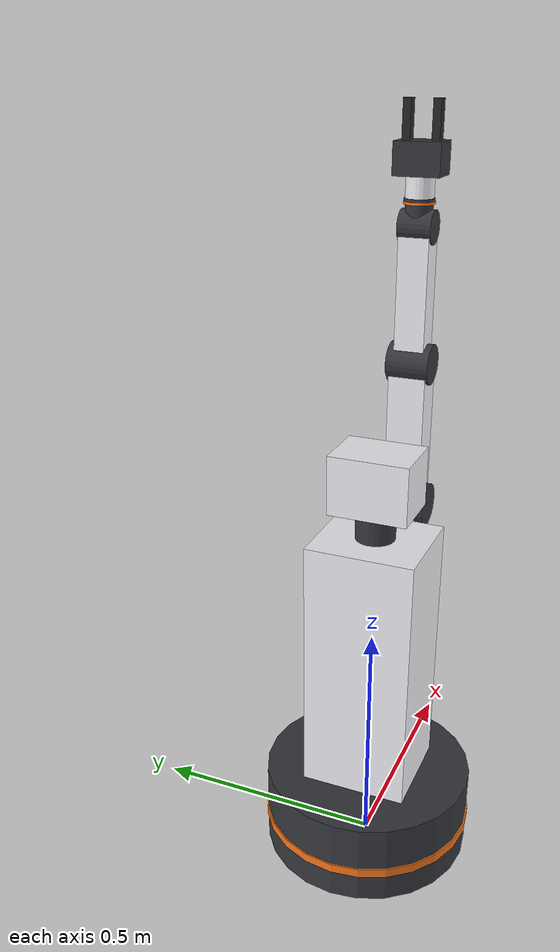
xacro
<?xml version="1.0"?>
<robot name="service_robot" xmlns:xacro="http://www.ros.org/wiki/xacro">

  <!-- Dimensi Base (Mobile Chassis Statis) -->
  <xacro:property name="chassis_radius"    value="0.22"/>  <!-- Diameter 44 cm -->
  <xacro:property name="chassis_height"    value="0.18"/>

  <!-- Dimensi Torso (Badan Statis) -->
  <xacro:property name="torso_width"       value="0.22"/>
  <xacro:property name="torso_depth"       value="0.20"/>
  <xacro:property name="torso_height"      value="0.55"/>

  <!-- Dimensi Kepala / Sensor Mast -->
  <xacro:property name="neck_height"       value="0.06"/>
  <xacro:property name="head_depth"        value="0.12"/>
  <xacro:property name="head_width"        value="0.16"/>
  <xacro:property name="head_height"       value="0.12"/>

  <!-- Dimensi Lengan (6-DOF) -->
  <xacro:property name="arm_mount_len"     value="0.09"/>  <!-- Tungkai maju bahu (14 cm, bebas dari tabung base) -->
  <xacro:property name="shoulder_len"      value="0.10"/>
  <xacro:property name="upper_arm_len"     value="0.30"/>
  <xacro:property name="forearm_len"       value="0.26"/>
  <xacro:property name="wrist_len"         value="0.09"/>
  <xacro:property name="gripper_base_len"  value="0.06"/>
  <xacro:property name="finger_len"        value="0.07"/>
  <xacro:property name="finger_width"      value="0.015"/>
  <xacro:property name="finger_stroke"     value="0.04"/>

  <!-- MATERIAL & WARNA KHAS SERVICE ROBOT -->
  <material name="robot_white">
    <color rgba="0.93 0.93 0.95 1.0"/>
  </material>
  <material name="dark_grey">
    <color rgba="0.20 0.21 0.23 1.0"/>
  </material>
  <material name="accent_orange">
    <color rgba="0.95 0.45 0.1 1.0"/>
  </material>
  <material name="head_visor">
    <color rgba="0.1 0.12 0.15 1.0"/>
  </material>
  <material name="gripper_finger_color">
    <color rgba="0.15 0.15 0.15 1.0"/>
  </material>
  <material name="camera_blue">
    <color rgba="0.1 0.3 0.7 1.0"/>
  </material>

  <!-- ============================================================
       STRUKTUR BODY STATIS (KOKOH DENGAN HUKUM FISIKA NYATA)
       ============================================================ -->

  <link name="world"/>

  <joint name="world_fixed" type="fixed">
    <parent link="world"/>
    <child link="base_link"/>
    <origin xyz="0 0 0" rpy="0 0 0"/>
  </joint>

  <!-- BASE CHASSIS (Lantai Z=0) -->
  <link name="base_link">
    <visual>
      <origin xyz="0 0 ${chassis_height/2}" rpy="0 0 0"/>
      <geometry>
        <cylinder length="${chassis_height}" radius="${chassis_radius}"/>
      </geometry>
      <material name="dark_grey"/>
    </visual>
    <visual>
      <origin xyz="0 0 ${chassis_height * 0.4}" rpy="0 0 0"/>
      <geometry>
        <cylinder length="0.02" radius="${chassis_radius + 0.003}"/>
      </geometry>
      <material name="accent_orange"/>
    </visual>
    <collision>
      <origin xyz="0 0 ${chassis_height/2}" rpy="0 0 0"/>
      <geometry>
        <cylinder length="${chassis_height}" radius="${chassis_radius}"/>
      </geometry>
    </collision>
    <inertial>
      <mass value="20.0"/>
      <origin xyz="0 0 ${chassis_height/2}"/>
      <inertia ixx="0.30" ixy="0" ixz="0" iyy="0.30" iyz="0" izz="0.45"/>
    </inertial>
  </link>

  <!-- TORSO / BADAN UTAMA -->
  <joint name="base_to_torso" type="fixed">
    <parent link="base_link"/>
    <child link="torso_link"/>
    <origin xyz="0 0 ${chassis_height}" rpy="0 0 0"/>
  </joint>

  <link name="torso_link">
    <visual>
      <origin xyz="0 0 ${torso_height/2}" rpy="0 0 0"/>
      <geometry>
        <box size="${torso_depth} ${torso_width} ${torso_height}"/>
      </geometry>
      <material name="robot_white"/>
    </visual>
    <visual>
      <origin xyz="${torso_depth/2 + 0.001} 0 ${torso_height/2}" rpy="0 0 0"/>
      <geometry>
        <box size="0.002 0.04 ${torso_height * 0.7}"/>
      </geometry>
      <material name="accent_orange"/>
    </visual>
    <visual>
      <origin xyz="${torso_depth/2 + 0.001} 0 ${torso_height * 0.75}" rpy="0 0 0"/>
      <geometry>
        <box size="0.002 0.14 0.12"/>
      </geometry>
      <material name="dark_grey"/>
    </visual>
    <collision>
      <origin xyz="0 0 ${torso_height/2}" rpy="0 0 0"/>
      <geometry>
        <box size="${torso_depth} ${torso_width} ${torso_height}"/>
      </geometry>
    </collision>
    <inertial>
      <mass value="15.0"/>
      <origin xyz="0 0 ${torso_height/2}"/>
      <inertia ixx="0.35" ixy="0" ixz="0" iyy="0.32" iyz="0" izz="0.15"/>
    </inertial>
  </link>

  <!-- KEPALA / SENSOR MAST STATIS -->
  <joint name="torso_to_neck" type="fixed">
    <parent link="torso_link"/>
    <child link="neck_link"/>
    <origin xyz="0 0 ${torso_height}" rpy="0 0 0"/>
  </joint>

  <link name="neck_link">
    <visual>
      <origin xyz="0 0 ${neck_height/2}" rpy="0 0 0"/>
      <geometry>
        <cylinder length="${neck_height}" radius="0.04"/>
      </geometry>
      <material name="dark_grey"/>
    </visual>
    <collision>
      <origin xyz="0 0 ${neck_height/2}" rpy="0 0 0"/>
      <geometry>
        <cylinder length="${neck_height}" radius="0.04"/>
      </geometry>
    </collision>
    <inertial>
      <mass value="0.5"/>
      <origin xyz="0 0 ${neck_height/2}"/>
      <inertia ixx="0.001" ixy="0" ixz="0" iyy="0.001" iyz="0" izz="0.001"/>
    </inertial>
  </link>

  <joint name="neck_to_head" type="fixed">
    <parent link="neck_link"/>
    <child link="head_link"/>
    <origin xyz="0 0 ${neck_height}" rpy="0 0 0"/>
  </joint>

  <link name="head_link">
    <visual>
      <origin xyz="0 0 ${head_height/2}" rpy="0 0 0"/>
      <geometry>
        <box size="${head_depth} ${head_width} ${head_height}"/>
      </geometry>
      <material name="robot_white"/>
    </visual>
    <visual>
      <origin xyz="${head_depth/2 + 0.001} 0 ${head_height/2}" rpy="0 0 0"/>
      <geometry>
        <box size="0.002 ${head_width * 0.8} ${head_height * 0.6}"/>
      </geometry>
      <material name="head_visor"/>
    </visual>
    <collision>
      <origin xyz="0 0 ${head_height/2}" rpy="0 0 0"/>
      <geometry>
        <box size="${head_depth} ${head_width} ${head_height}"/>
      </geometry>
    </collision>
    <inertial>
      <mass value="1.0"/>
      <origin xyz="0 0 ${head_height/2}"/>
      <inertia ixx="0.003" ixy="0" ixz="0" iyy="0.003" iyz="0" izz="0.003"/>
    </inertial>
  </link>

  <!-- ============================================================
       ARM MOUNT & 6-DOF ARM DENGAN BATASAN SUDUT FISIK REALISTIS
       ============================================================ -->

  <joint name="torso_to_arm_mount" type="fixed">
    <parent link="torso_link"/>
    <child link="arm_mount_link"/>
    <origin xyz="${torso_depth/2} 0 ${torso_height - 0.10}" rpy="0 0 0"/>
  </joint>

  <link name="arm_mount_link">
    <!-- Casing tungkai silinder maju -->
    <visual>
      <origin xyz="${arm_mount_len/2} 0 0" rpy="0 1.5708 0"/>
      <geometry>
        <cylinder length="${arm_mount_len}" radius="0.045"/>
      </geometry>
      <material name="dark_grey"/>
    </visual>
    <!-- Cincin aksen oranye di pangkal torso -->
    <visual>
      <origin xyz="0.005 0 0" rpy="0 1.5708 0"/>
      <geometry>
        <cylinder length="0.01" radius="0.052"/>
      </geometry>
      <material name="accent_orange"/>
    </visual>
    <collision>
      <origin xyz="${arm_mount_len/2} 0 0" rpy="0 1.5708 0"/>
      <geometry>
        <cylinder length="${arm_mount_len}" radius="0.045"/>
      </geometry>
    </collision>
    <inertial>
      <mass value="0.8"/>
      <origin xyz="${arm_mount_len/2} 0 0"/>
      <inertia ixx="0.001" ixy="0" ixz="0" iyy="0.001" iyz="0" izz="0.001"/>
    </inertial>
  </link>

  <!-- JOINT 1: Shoulder Yaw (Diletakkan di ujung tungkai) -->
  <joint name="joint1_shoulder_yaw" type="revolute">
    <parent link="arm_mount_link"/>
    <child link="link1_shoulder"/>
    <origin xyz="${arm_mount_len} 0 0" rpy="0 0 0"/>
    <axis xyz="0 0 1"/>
    <limit lower="-2.1" upper="2.1" effort="40.0" velocity="2.0"/>
  </joint>

  <link name="link1_shoulder">
    <visual>
      <origin xyz="0 0 ${shoulder_len/2}" rpy="0 0 0"/>
      <geometry>
        <cylinder length="${shoulder_len}" radius="0.05"/>
      </geometry>
      <material name="robot_white"/>
    </visual>
    <visual>
      <origin xyz="0 0 ${shoulder_len}" rpy="1.5708 0 0"/>
      <geometry>
        <cylinder length="0.10" radius="0.045"/>
      </geometry>
      <material name="dark_grey"/>
    </visual>
    <collision>
      <origin xyz="0 0 ${shoulder_len/2}" rpy="0 0 0"/>
      <geometry>
        <cylinder length="${shoulder_len}" radius="0.05"/>
      </geometry>
    </collision>
    <inertial>
      <mass value="1.5"/>
      <origin xyz="0 0 ${shoulder_len/2}"/>
      <inertia ixx="0.004" ixy="0" ixz="0" iyy="0.004" iyz="0" izz="0.003"/>
    </inertial>
  </link>

  <!-- JOINT 2: Shoulder Pitch (Dibatasi lower -0.5 agar tidak menekuk menabrak badan/kepala) -->
  <joint name="joint2_shoulder_pitch" type="revolute">
    <parent link="link1_shoulder"/>
    <child link="link2_upper_arm"/>
    <origin xyz="0 0 ${shoulder_len}" rpy="0 0 0"/>
    <axis xyz="0 1 0"/>
    <limit lower="-0.5" upper="1.8" effort="50.0" velocity="1.5"/>
  </joint>

  <link name="link2_upper_arm">
    <visual>
      <origin xyz="0 0 ${upper_arm_len/2}" rpy="0 0 0"/>
      <geometry>
        <box size="0.065 0.075 ${upper_arm_len - 0.04}"/>
      </geometry>
      <material name="robot_white"/>
    </visual>
    <visual>
      <origin xyz="0.033 0 ${upper_arm_len/2}" rpy="0 0 0"/>
      <geometry>
        <box size="0.002 0.035 ${upper_arm_len * 0.7}"/>
      </geometry>
      <material name="accent_orange"/>
    </visual>
    <visual>
      <origin xyz="0 0 ${upper_arm_len}" rpy="1.5708 0 0"/>
      <geometry>
        <cylinder length="0.085" radius="0.04"/>
      </geometry>
      <material name="dark_grey"/>
    </visual>
    <collision>
      <origin xyz="0 0 ${upper_arm_len/2}" rpy="0 0 0"/>
      <geometry>
        <box size="0.065 0.075 ${upper_arm_len}"/>
      </geometry>
    </collision>
    <inertial>
      <mass value="2.0"/>
      <origin xyz="0 0 ${upper_arm_len/2}"/>
      <inertia ixx="0.015" ixy="0" ixz="0" iyy="0.015" iyz="0" izz="0.003"/>
    </inertial>
  </link>

  <!-- JOINT 3: Elbow Pitch -->
  <joint name="joint3_elbow_pitch" type="revolute">
    <parent link="link2_upper_arm"/>
    <child link="link3_forearm"/>
    <origin xyz="0 0 ${upper_arm_len}" rpy="0 0 0"/>
    <axis xyz="0 1 0"/>
    <limit lower="-2.2" upper="1.5" effort="30.0" velocity="2.0"/>
  </joint>

  <link name="link3_forearm">
    <visual>
      <origin xyz="0 0 ${forearm_len/2}" rpy="0 0 0"/>
      <geometry>
        <box size="0.055 0.06 ${forearm_len - 0.03}"/>
      </geometry>
      <material name="robot_white"/>
    </visual>
    <visual>
      <origin xyz="0.028 0 ${forearm_len/2}" rpy="0 0 0"/>
      <geometry>
        <box size="0.002 0.025 ${forearm_len * 0.6}"/>
      </geometry>
      <material name="accent_orange"/>
    </visual>
    <collision>
      <origin xyz="0 0 ${forearm_len/2}" rpy="0 0 0"/>
      <geometry>
        <box size="0.055 0.06 ${forearm_len}"/>
      </geometry>
    </collision>
    <inertial>
      <mass value="1.4"/>
      <origin xyz="0 0 ${forearm_len/2}"/>
      <inertia ixx="0.008" ixy="0" ixz="0" iyy="0.008" iyz="0" izz="0.002"/>
    </inertial>
  </link>

  <!-- JOINT 4: Wrist Pitch -->
  <joint name="joint4_wrist_pitch" type="revolute">
    <parent link="link3_forearm"/>
    <child link="link4_wrist_pitch"/>
    <origin xyz="0 0 ${forearm_len}" rpy="0 0 0"/>
    <axis xyz="0 1 0"/>
    <limit lower="-1.8" upper="1.8" effort="15.0" velocity="2.5"/>
  </joint>

  <link name="link4_wrist_pitch">
    <!-- Silinder poros pitch horizontal -->
    <visual>
      <origin xyz="0 0 0" rpy="1.5708 0 0"/>
      <geometry>
        <cylinder length="0.065" radius="0.032"/>
      </geometry>
      <material name="dark_grey"/>
    </visual>
    <!-- Casing leher penghubung dari sumbu pitch (Z=0) ke sumbu yaw (Z=0.045) -->
    <visual>
      <origin xyz="0 0 0.0225" rpy="0 0 0"/>
      <geometry>
        <cylinder length="0.045" radius="0.026"/>
      </geometry>
      <material name="dark_grey"/>
    </visual>
    <!-- Cincin flange/bantalan dudukan Joint 5 -->
    <visual>
      <origin xyz="0 0 0.043" rpy="0 0 0"/>
      <geometry>
        <cylinder length="0.005" radius="0.030"/>
      </geometry>
      <material name="accent_orange"/>
    </visual>
    <collision>
      <origin xyz="0 0 0.02" rpy="0 0 0"/>
      <geometry>
        <cylinder length="0.045" radius="0.032"/>
      </geometry>
    </collision>
    <inertial>
      <mass value="0.5"/>
      <origin xyz="0 0 0.02"/>
      <inertia ixx="0.001" ixy="0" ixz="0" iyy="0.001" iyz="0" izz="0.001"/>
    </inertial>
  </link>

  <!-- JOINT 5: Wrist Yaw -->
  <joint name="joint5_wrist_yaw" type="revolute">
    <parent link="link4_wrist_pitch"/>
    <child link="link5_wrist_yaw"/>
    <origin xyz="0 0 0.045" rpy="0 0 0"/>
    <axis xyz="0 0 1"/>
    <limit lower="-3.14" upper="3.14" effort="10.0" velocity="3.0"/>
  </joint>

  <link name="link5_wrist_yaw">
    <!-- Piringan dasar penghubung ke flange Joint 4 -->
    <visual>
      <origin xyz="0 0 0.003" rpy="0 0 0"/>
      <geometry>
        <cylinder length="0.006" radius="0.029"/>
      </geometry>
      <material name="dark_grey"/>
    </visual>
    <!-- Casing utama wrist yaw putih -->
    <visual>
      <origin xyz="0 0 ${wrist_len/4 + 0.003}" rpy="0 0 0"/>
      <geometry>
        <cylinder length="${wrist_len/2}" radius="0.027"/>
      </geometry>
      <material name="robot_white"/>
    </visual>
    <collision>
      <origin xyz="0 0 ${wrist_len/4}" rpy="0 0 0"/>
      <geometry>
        <cylinder length="${wrist_len/2}" radius="0.029"/>
      </geometry>
    </collision>
    <inertial>
      <mass value="0.4"/>
      <origin xyz="0 0 ${wrist_len/4}"/>
      <inertia ixx="0.0005" ixy="0" ixz="0" iyy="0.0005" iyz="0" izz="0.0005"/>
    </inertial>
  </link>

  <!-- JOINT 6: Wrist Roll -->
  <joint name="joint6_wrist_roll" type="revolute">
    <parent link="link5_wrist_yaw"/>
    <child link="gripper_base_link"/>
    <origin xyz="0 0 ${wrist_len/2}" rpy="0 0 0"/>
    <axis xyz="0 0 1"/>
    <limit lower="-3.14" upper="3.14" effort="8.0" velocity="3.0"/>
  </joint>

  <!-- GRIPPER BASE / PALM -->
  <link name="gripper_base_link">
    <visual>
      <origin xyz="0 0 ${gripper_base_len/2}" rpy="0 0 0"/>
      <geometry>
        <box size="0.065 0.09 ${gripper_base_len}"/>
      </geometry>
      <material name="dark_grey"/>
    </visual>
    <collision>
      <origin xyz="0 0 ${gripper_base_len/2}" rpy="0 0 0"/>
      <geometry>
        <box size="0.065 0.09 ${gripper_base_len}"/>
      </geometry>
    </collision>
    <inertial>
      <mass value="0.6"/>
      <origin xyz="0 0 ${gripper_base_len/2}"/>
      <inertia ixx="0.0008" ixy="0" ixz="0" iyy="0.0006" iyz="0" izz="0.0008"/>
    </inertial>
  </link>

  <!-- EYE-IN-HAND CAMERA -->
  <joint name="camera_joint" type="fixed">
    <parent link="gripper_base_link"/>
    <child link="camera_link"/>
    <origin xyz="0.035 0 0.02" rpy="0 0 0"/>
  </joint>

  <link name="camera_link">
    <visual>
      <origin xyz="0 0 0" rpy="0 0 0"/>
      <geometry>
        <box size="0.02 0.06 0.022"/>
      </geometry>
      <material name="camera_blue"/>
    </visual>
  </link>

  <!-- GRIPPER FINGER KIRI -->
  <joint name="gripper_left_finger_joint" type="prismatic">
    <parent link="gripper_base_link"/>
    <child link="gripper_left_finger"/>
    <origin xyz="0 0.028 ${gripper_base_len}" rpy="0 0 0"/>
    <axis xyz="0 1 0"/>
    <limit lower="0.0" upper="${finger_stroke}" effort="20.0" velocity="0.1"/>
  </joint>

  <link name="gripper_left_finger">
    <visual>
      <origin xyz="0 0 ${finger_len/2}" rpy="0 0 0"/>
      <geometry>
        <box size="0.022 ${finger_width} ${finger_len}"/>
      </geometry>
      <material name="gripper_finger_color"/>
    </visual>
    <visual>
      <origin xyz="0 -0.004 ${finger_len/2}" rpy="0 0 0"/>
      <geometry>
        <box size="0.018 0.003 ${finger_len * 0.8}"/>
      </geometry>
      <material name="accent_orange"/>
    </visual>
    <collision>
      <origin xyz="0 0 ${finger_len/2}" rpy="0 0 0"/>
      <geometry>
        <box size="0.022 ${finger_width} ${finger_len}"/>
      </geometry>
    </collision>
    <inertial>
      <mass value="0.1"/>
      <origin xyz="0 0 ${finger_len/2}"/>
      <inertia ixx="0.0001" ixy="0" ixz="0" iyy="0.0001" iyz="0" izz="0.0001"/>
    </inertial>
  </link>

  <!-- GRIPPER FINGER KANAN -->
  <joint name="gripper_right_finger_joint" type="prismatic">
    <parent link="gripper_base_link"/>
    <child link="gripper_right_finger"/>
    <origin xyz="0 -0.028 ${gripper_base_len}" rpy="0 0 0"/>
    <axis xyz="0 -1 0"/>
    <limit lower="0.0" upper="${finger_stroke}" effort="20.0" velocity="0.1"/>
  </joint>

  <link name="gripper_right_finger">
    <visual>
      <origin xyz="0 0 ${finger_len/2}" rpy="0 0 0"/>
      <geometry>
        <box size="0.022 ${finger_width} ${finger_len}"/>
      </geometry>
      <material name="gripper_finger_color"/>
    </visual>
    <visual>
      <origin xyz="0 0.004 ${finger_len/2}" rpy="0 0 0"/>
      <geometry>
        <box size="0.018 0.003 ${finger_len * 0.8}"/>
      </geometry>
      <material name="accent_orange"/>
    </visual>
    <collision>
      <origin xyz="0 0 ${finger_len/2}" rpy="0 0 0"/>
      <geometry>
        <box size="0.022 ${finger_width} ${finger_len}"/>
      </geometry>
    </collision>
    <inertial>
      <mass value="0.1"/>
      <origin xyz="0 0 ${finger_len/2}"/>
      <inertia ixx="0.0001" ixy="0" ixz="0" iyy="0.0001" iyz="0" izz="0.0001"/>
    </inertial>
  </link>

  <!-- GRASP TCP -->
  <joint name="grasp_tcp_joint" type="fixed">
    <parent link="gripper_base_link"/>
    <child link="grasp_tcp"/>
    <origin xyz="0 0 ${gripper_base_len + finger_len - 0.01}" rpy="0 0 0"/>
  </joint>
  <link name="grasp_tcp"/>

  <!-- ============================================================
       ROS2 CONTROL & GAZEBO SIM HARMONIC PLUGIN
       ============================================================ -->
  <ros2_control name="GazeboSimSystem" type="system">
    <hardware>
      <plugin>gz_ros2_control/GazeboSimSystem</plugin>
    </hardware>
    <joint name="joint1_shoulder_yaw">
      <command_interface name="position"/>
      <state_interface name="position">
        <param name="initial_value">0.0</param>
      </state_interface>
      <state_interface name="velocity"/>
    </joint>
    <joint name="joint2_shoulder_pitch">
      <command_interface name="position"/>
      <state_interface name="position">
        <param name="initial_value">0.0</param>
      </state_interface>
      <state_interface name="velocity"/>
    </joint>
    <joint name="joint3_elbow_pitch">
      <command_interface name="position"/>
      <state_interface name="position">
        <param name="initial_value">0.0</param>
      </state_interface>
      <state_interface name="velocity"/>
    </joint>
    <joint name="joint4_wrist_pitch">
      <command_interface name="position"/>
      <state_interface name="position">
        <param name="initial_value">0.0</param>
      </state_interface>
      <state_interface name="velocity"/>
    </joint>
    <joint name="joint5_wrist_yaw">
      <command_interface name="position"/>
      <state_interface name="position">
        <param name="initial_value">0.0</param>
      </state_interface>
      <state_interface name="velocity"/>
    </joint>
    <joint name="joint6_wrist_roll">
      <command_interface name="position"/>
      <state_interface name="position">
        <param name="initial_value">0.0</param>
      </state_interface>
      <state_interface name="velocity"/>
    </joint>
    <joint name="gripper_left_finger_joint">
      <command_interface name="position"/>
      <state_interface name="position">
        <param name="initial_value">0.0</param>
      </state_interface>
      <state_interface name="velocity"/>
    </joint>
    <joint name="gripper_right_finger_joint">
      <command_interface name="position"/>
      <state_interface name="position">
        <param name="initial_value">0.0</param>
      </state_interface>
      <state_interface name="velocity"/>
    </joint>
  </ros2_control>

  <!-- Gazebo ROS 2 Control Plugin -->
  <gazebo>
    <plugin filename="gz_ros2_control-system" name="gz_ros2_control::GazeboSimROS2ControlPlugin">
      <parameters>$(find arm_description)/config/arm_controllers.yaml</parameters>
    </plugin>
  </gazebo>

</robot>
